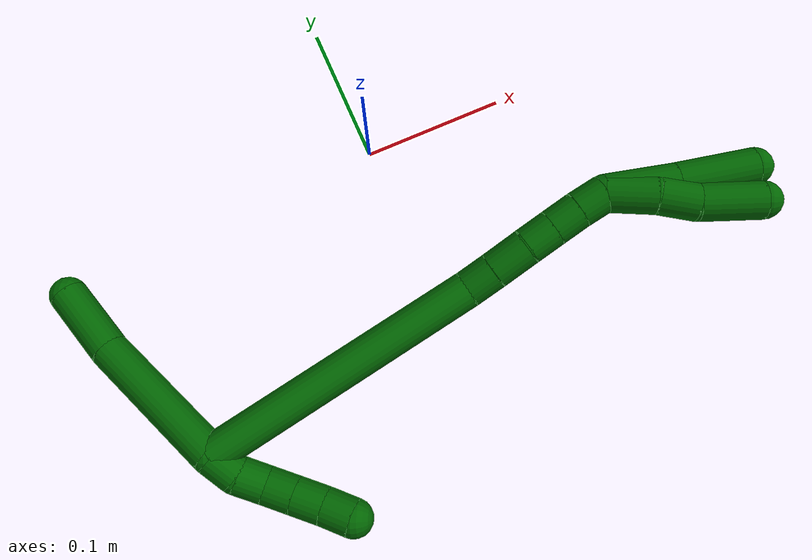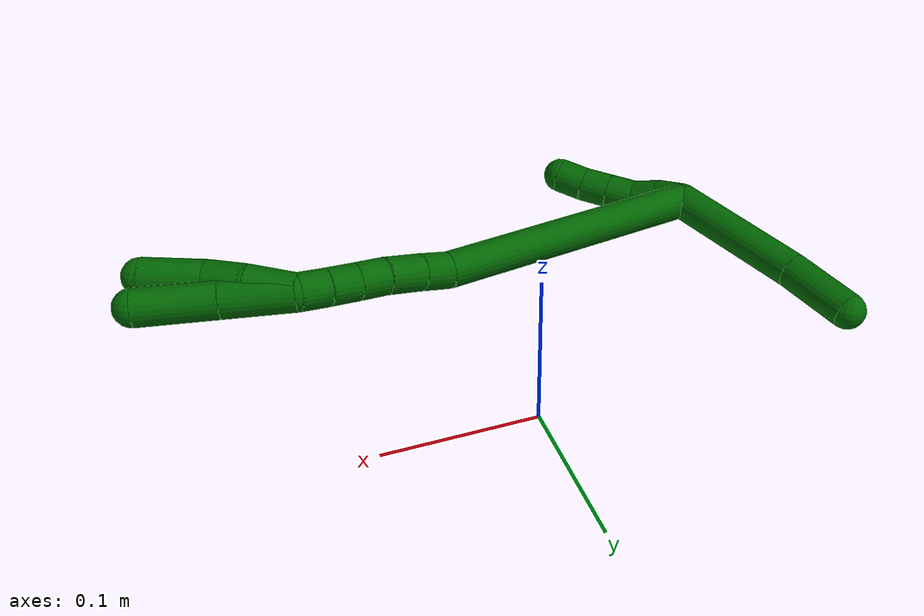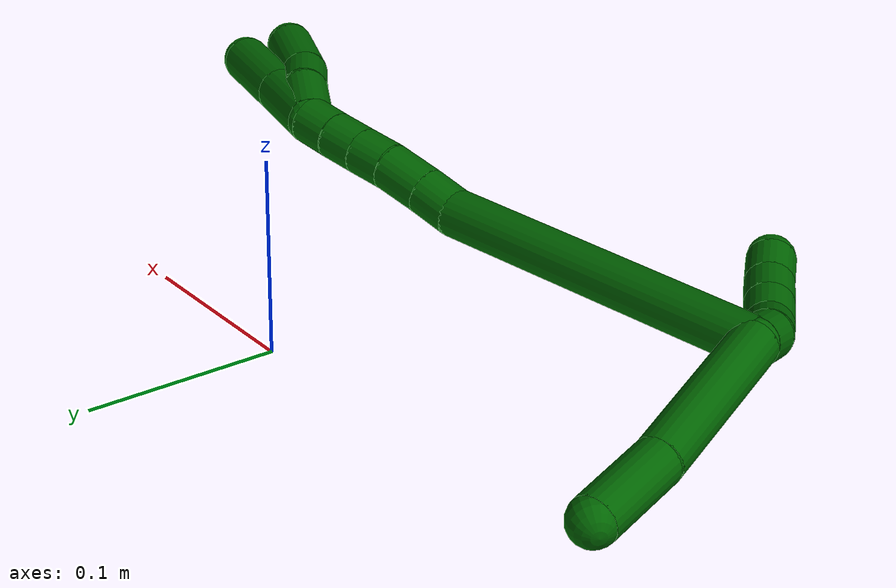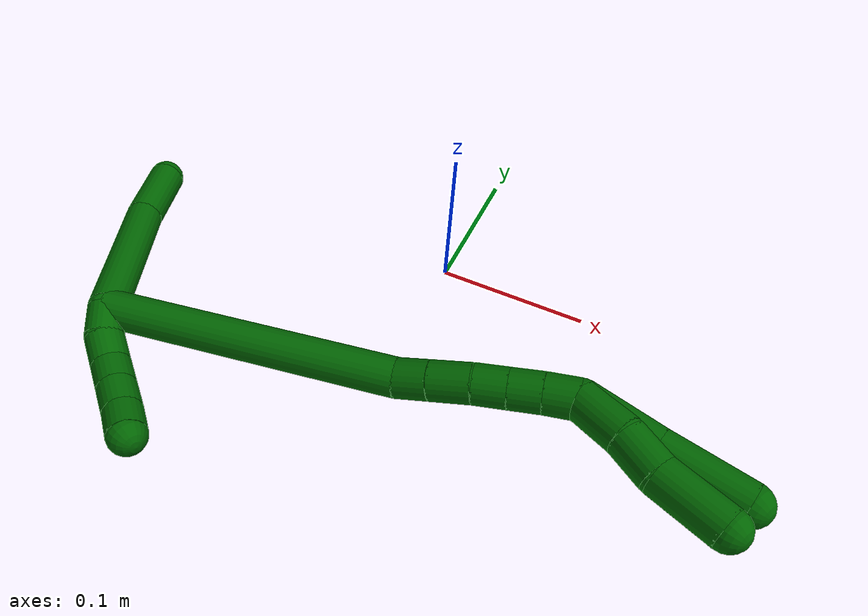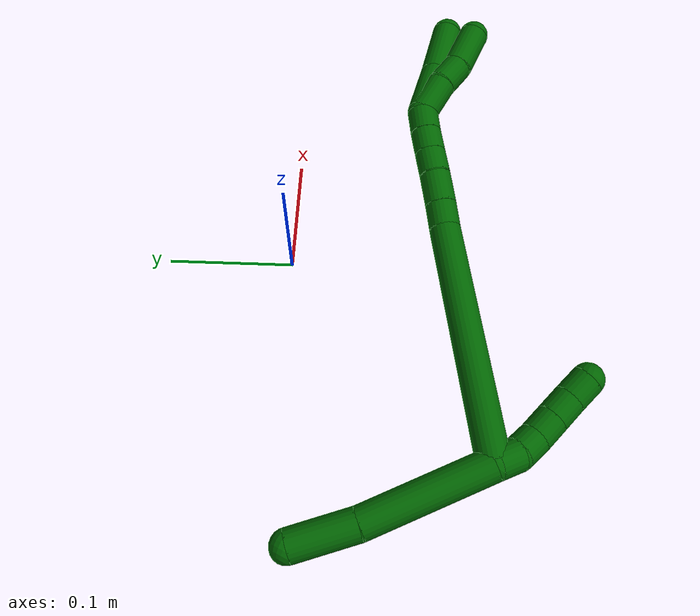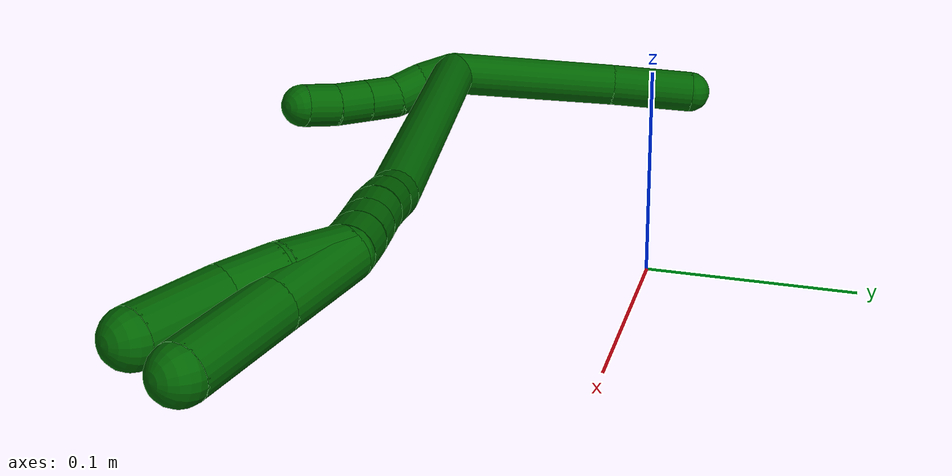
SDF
<sdf version="1.7">
 <world name="default">
  <model name="photoneo_s_sensor">
   <static>1</static>
   <pose>0 0 2 1.57079 1.57079 3.14159</pose>
   <link name="link">
    <inertial><mass>0.1</mass></inertial>
    <sensor name="sensor" type="depth">
     <update_rate>30</update_rate>
     <camera>
      <horizontal_fov>1.22</horizontal_fov>
      <image><width>1920</width><height>1200</height><format>B8G8R8</format></image>
      <clip><near>0.1</near><far>4</far></clip>
      <depth_camera><output>points</output></depth_camera>
     </camera>
     <plugin name="camera_plugin" filename="libgazebo_ros_depth_camera.so">
      <baseline>0.2</baseline>
      <alwaysOn>1</alwaysOn>
      <updateRate>0.0</updateRate>
      <cameraName>camera_ir</cameraName>
      <imageTopicName>/camera/color/image_raw</imageTopicName>
      <cameraInfoTopicName>/camera/color/camera_info</cameraInfoTopicName>
      <depthImageTopicName>/camera/depth/image_raw</depthImageTopicName>
      <depthImageCameraInfoTopicName>/camera/depth/camera_info</depthImageCameraInfoTopicName>
      <pointCloudTopicName>/camera/depth/points</pointCloudTopicName>
      <frameName>fr_optical</frameName>
      <pointCloudCutoff>0.1</pointCloudCutoff>
      <pointCloudCutoffMax>2.0</pointCloudCutoffMax>
      <distortionK1>0</distortionK1>
      <distortionK2>0</distortionK2>
      <distortionK3>0</distortionK3>
      <distortionT1>0</distortionT1>
      <distortionT2>0</distortionT2>
      <CxPrime>0</CxPrime>
      <Cx>0</Cx>
      <Cy>0</Cy>
      <focalLength>0</focalLength>
      <hackBaseline>0</hackBaseline>
     </plugin>
    </sensor>
   </link>
  </model>
  <model name="bin">
   <static>1</static>
   <link name="bottom">
    <collision name="collision-bottom">
     <pose>0 0 -0.01 0 -0 0</pose>
     <geometry><box><size>0.8 0.6 0.02</size></box></geometry>
     <surface>
      <friction><ode><mu>100</mu><mu2>100</mu2></ode></friction>
      <contact><collide_bitmask>65535</collide_bitmask></contact>
     </surface>
    </collision>
   </link>
   <link name="west_wall">
    <collision name="collision-west_wall">
     <pose>-0.41 0 0.1 0 -0 0</pose>
     <geometry><box><size>0.02 0.6 0.2</size></box></geometry>
     <surface>
      <friction><ode><mu>100</mu><mu2>100</mu2></ode></friction>
      <contact><collide_bitmask>65535</collide_bitmask></contact>
     </surface>
    </collision>
   </link>
   <link name="east_wall">
    <collision name="collision-east_wall">
     <pose>0.41 0 0.1 0 -0 0</pose>
     <geometry><box><size>0.02 0.6 0.2</size></box></geometry>
     <surface>
      <friction><ode><mu>100</mu><mu2>100</mu2></ode></friction>
      <contact><collide_bitmask>65535</collide_bitmask></contact>
     </surface>
    </collision>
   </link>
   <link name="south_wall">
    <collision name="collision-south_wall">
     <pose>0 -0.31 0.1 0 -0 0</pose>
     <geometry><box><size>0.8 0.02 0.2</size></box></geometry>
     <surface>
      <friction><ode><mu>100</mu><mu2>100</mu2></ode></friction>
      <contact><collide_bitmask>65535</collide_bitmask></contact>
     </surface>
    </collision>
   </link>
   <link name="north_wall">
    <collision name="collision-north_wall">
     <pose>0 0.31 0.1 0 -0 0</pose>
     <geometry><box><size>0.8 0.02 0.2</size></box></geometry>
     <surface>
      <friction><ode><mu>100</mu><mu2>100</mu2></ode></friction>
      <contact><collide_bitmask>65535</collide_bitmask></contact>
     </surface>
    </collision>
   </link>
  </model>
  <model name="6">
   <static>0</static>
   <link name="6">
    <collision name="collision-cylinder-e_1_2_8">
     <pose>0.014236 0.028933 -0.03808 -2.49185 0.289326 -0.816475</pose>
     <geometry><cylinder><radius>0.0125</radius><length>0.099797</length></cylinder></geometry>
     <surface>
      <friction><ode><mu>1.16</mu><mu2>1.16</mu2><slip1>0</slip1><slip2>0</slip2></ode></friction>
      <contact><ode><kp>1e+06</kp><kd>1</kd><max_vel>0</max_vel><min_depth>0.001</min_depth></ode></contact>
     </surface>
    </collision>
    <visual name="visual-cylinder-e_1_2_8">
     <pose>0.014236 0.028933 -0.03808 -2.49185 0.289326 -0.816475</pose>
     <geometry><cylinder><radius>0.0125</radius><length>0.099797</length></cylinder></geometry>
     <material><ambient>0 0.392157 0.003922 1</ambient></material>
    </visual>
    <collision name="collision-cylinder-e_2_8_6">
     <pose>0.036338 0.074374 -0.093356 -2.37661 0.318701 -0.760122</pose>
     <geometry><cylinder><radius>0.0125</radius><length>0.050203</length></cylinder></geometry>
     <surface>
      <friction><ode><mu>1.16</mu><mu2>1.16</mu2><slip1>0</slip1><slip2>0</slip2></ode></friction>
      <contact><ode><kp>1e+06</kp><kd>1</kd><max_vel>0</max_vel><min_depth>0.001</min_depth></ode></contact>
     </surface>
    </collision>
    <visual name="visual-cylinder-e_2_8_6">
     <pose>0.036338 0.074374 -0.093356 -2.37661 0.318701 -0.760122</pose>
     <geometry><cylinder><radius>0.0125</radius><length>0.050203</length></cylinder></geometry>
     <material><ambient>0 0.392157 0.003922 1</ambient></material>
    </visual>
    <collision name="collision-cylinder-e_1_2_9">
     <pose>0.000832 -0.006733 0.007346 0.741895 0.08333 0.032427</pose>
     <geometry><cylinder><radius>0.0125</radius><length>0.02</length></cylinder></geometry>
     <surface>
      <friction><ode><mu>1.16</mu><mu2>1.16</mu2><slip1>0</slip1><slip2>0</slip2></ode></friction>
      <contact><ode><kp>1e+06</kp><kd>1</kd><max_vel>0</max_vel><min_depth>0.001</min_depth></ode></contact>
     </surface>
    </collision>
    <visual name="visual-cylinder-e_1_2_9">
     <pose>0.000832 -0.006733 0.007346 0.741895 0.08333 0.032427</pose>
     <geometry><cylinder><radius>0.0125</radius><length>0.02</length></cylinder></geometry>
     <material><ambient>0 0.392157 0.003922 1</ambient></material>
    </visual>
    <collision name="collision-cylinder-e_2_9_10">
     <pose>0.003982 -0.01786 0.023372 0.468613 0.233847 0.056058</pose>
     <geometry><cylinder><radius>0.0125</radius><length>0.02</length></cylinder></geometry>
     <surface>
      <friction><ode><mu>1.16</mu><mu2>1.16</mu2><slip1>0</slip1><slip2>0</slip2></ode></friction>
      <contact><ode><kp>1e+06</kp><kd>1</kd><max_vel>0</max_vel><min_depth>0.001</min_depth></ode></contact>
     </surface>
    </collision>
    <visual name="visual-cylinder-e_2_9_10">
     <pose>0.003982 -0.01786 0.023372 0.468613 0.233847 0.056058</pose>
     <geometry><cylinder><radius>0.0125</radius><length>0.02</length></cylinder></geometry>
     <material><ambient>0 0.392157 0.003922 1</ambient></material>
    </visual>
    <collision name="collision-cylinder-e_3_10_11">
     <pose>0.005808 -0.025176 0.041602 0.296912 -0.049149 -0.007352</pose>
     <geometry><cylinder><radius>0.0125</radius><length>0.02</length></cylinder></geometry>
     <surface>
      <friction><ode><mu>1.16</mu><mu2>1.16</mu2><slip1>0</slip1><slip2>0</slip2></ode></friction>
      <contact><ode><kp>1e+06</kp><kd>1</kd><max_vel>0</max_vel><min_depth>0.001</min_depth></ode></contact>
     </surface>
    </collision>
    <visual name="visual-cylinder-e_3_10_11">
     <pose>0.005808 -0.025176 0.041602 0.296912 -0.049149 -0.007352</pose>
     <geometry><cylinder><radius>0.0125</radius><length>0.02</length></cylinder></geometry>
     <material><ambient>0 0.392157 0.003922 1</ambient></material>
    </visual>
    <collision name="collision-cylinder-e_4_11_12">
     <pose>0.004809 -0.031015 0.060704 0.296403 -0.050773 -0.007582</pose>
     <geometry><cylinder><radius>0.0125</radius><length>0.02</length></cylinder></geometry>
     <surface>
      <friction><ode><mu>1.16</mu><mu2>1.16</mu2><slip1>0</slip1><slip2>0</slip2></ode></friction>
      <contact><ode><kp>1e+06</kp><kd>1</kd><max_vel>0</max_vel><min_depth>0.001</min_depth></ode></contact>
     </surface>
    </collision>
    <visual name="visual-cylinder-e_4_11_12">
     <pose>0.004809 -0.031015 0.060704 0.296403 -0.050773 -0.007582</pose>
     <geometry><cylinder><radius>0.0125</radius><length>0.02</length></cylinder></geometry>
     <material><ambient>0 0.392157 0.003922 1</ambient></material>
    </visual>
    <collision name="collision-cylinder-e_5_12_5">
     <pose>0.002746 -0.03667 0.079747 0.28085 -0.156161 -0.022118</pose>
     <geometry><cylinder><radius>0.0125</radius><length>0.02</length></cylinder></geometry>
     <surface>
      <friction><ode><mu>1.16</mu><mu2>1.16</mu2><slip1>0</slip1><slip2>0</slip2></ode></friction>
      <contact><ode><kp>1e+06</kp><kd>1</kd><max_vel>0</max_vel><min_depth>0.001</min_depth></ode></contact>
     </surface>
    </collision>
    <visual name="visual-cylinder-e_5_12_5">
     <pose>0.002746 -0.03667 0.079747 0.28085 -0.156161 -0.022118</pose>
     <geometry><cylinder><radius>0.0125</radius><length>0.02</length></cylinder></geometry>
     <material><ambient>0 0.392157 0.003922 1</ambient></material>
    </visual>
    <collision name="collision-cylinder-e_1_2_13">
     <pose>0.032455 0.045376 0.078373 -0.524817 0.344112 -0.093285</pose>
     <geometry><cylinder><radius>0.0125</radius><length>0.192402</length></cylinder></geometry>
     <surface>
      <friction><ode><mu>1.16</mu><mu2>1.16</mu2><slip1>0</slip1><slip2>0</slip2></ode></friction>
      <contact><ode><kp>1e+06</kp><kd>1</kd><max_vel>0</max_vel><min_depth>0.001</min_depth></ode></contact>
     </surface>
    </collision>
    <visual name="visual-cylinder-e_1_2_13">
     <pose>0.032455 0.045376 0.078373 -0.524817 0.344112 -0.093285</pose>
     <geometry><cylinder><radius>0.0125</radius><length>0.192402</length></cylinder></geometry>
     <material><ambient>0 0.392157 0.003922 1</ambient></material>
    </visual>
    <collision name="collision-cylinder-e_2_13_14">
     <pose>0.066102 0.096745 0.165395 -0.605929 0.112914 -0.035329</pose>
     <geometry><cylinder><radius>0.0125</radius><length>0.021178</length></cylinder></geometry>
     <surface>
      <friction><ode><mu>1.16</mu><mu2>1.16</mu2><slip1>0</slip1><slip2>0</slip2></ode></friction>
      <contact><ode><kp>1e+06</kp><kd>1</kd><max_vel>0</max_vel><min_depth>0.001</min_depth></ode></contact>
     </surface>
    </collision>
    <visual name="visual-cylinder-e_2_13_14">
     <pose>0.066102 0.096745 0.165395 -0.605929 0.112914 -0.035329</pose>
     <geometry><cylinder><radius>0.0125</radius><length>0.021178</length></cylinder></geometry>
     <material><ambient>0 0.392157 0.003922 1</ambient></material>
    </visual>
    <collision name="collision-cylinder-e_3_14_15">
     <pose>0.069092 0.110156 0.184499 -0.61709 0.139205 -0.044432</pose>
     <geometry><cylinder><radius>0.0125</radius><length>0.025891</length></cylinder></geometry>
     <surface>
      <friction><ode><mu>1.16</mu><mu2>1.16</mu2><slip1>0</slip1><slip2>0</slip2></ode></friction>
      <contact><ode><kp>1e+06</kp><kd>1</kd><max_vel>0</max_vel><min_depth>0.001</min_depth></ode></contact>
     </surface>
    </collision>
    <visual name="visual-cylinder-e_3_14_15">
     <pose>0.069092 0.110156 0.184499 -0.61709 0.139205 -0.044432</pose>
     <geometry><cylinder><radius>0.0125</radius><length>0.025891</length></cylinder></geometry>
     <material><ambient>0 0.392157 0.003922 1</ambient></material>
    </visual>
    <collision name="collision-cylinder-e_4_15_16">
     <pose>0.073239 0.123126 0.203174 -0.594071 0.232763 -0.071539</pose>
     <geometry><cylinder><radius>0.0125</radius><length>0.020386</length></cylinder></geometry>
     <surface>
      <friction><ode><mu>1.16</mu><mu2>1.16</mu2><slip1>0</slip1><slip2>0</slip2></ode></friction>
      <contact><ode><kp>1e+06</kp><kd>1</kd><max_vel>0</max_vel><min_depth>0.001</min_depth></ode></contact>
     </surface>
    </collision>
    <visual name="visual-cylinder-e_4_15_16">
     <pose>0.073239 0.123126 0.203174 -0.594071 0.232763 -0.071539</pose>
     <geometry><cylinder><radius>0.0125</radius><length>0.020386</length></cylinder></geometry>
     <material><ambient>0 0.392157 0.003922 1</ambient></material>
    </visual>
    <collision name="collision-cylinder-e_5_16_17">
     <pose>0.077796 0.134127 0.219484 -0.592742 0.222336 -0.068148</pose>
     <geometry><cylinder><radius>0.0125</radius><length>0.020004</length></cylinder></geometry>
     <surface>
      <friction><ode><mu>1.16</mu><mu2>1.16</mu2><slip1>0</slip1><slip2>0</slip2></ode></friction>
      <contact><ode><kp>1e+06</kp><kd>1</kd><max_vel>0</max_vel><min_depth>0.001</min_depth></ode></contact>
     </surface>
    </collision>
    <visual name="visual-cylinder-e_5_16_17">
     <pose>0.077796 0.134127 0.219484 -0.592742 0.222336 -0.068148</pose>
     <geometry><cylinder><radius>0.0125</radius><length>0.020004</length></cylinder></geometry>
     <material><ambient>0 0.392157 0.003922 1</ambient></material>
    </visual>
    <collision name="collision-cylinder-e_6_17_1">
     <pose>0.082182 0.144628 0.236009 -0.539637 0.218333 -0.060605</pose>
     <geometry><cylinder><radius>0.0125</radius><length>0.020139</length></cylinder></geometry>
     <surface>
      <friction><ode><mu>1.16</mu><mu2>1.16</mu2><slip1>0</slip1><slip2>0</slip2></ode></friction>
      <contact><ode><kp>1e+06</kp><kd>1</kd><max_vel>0</max_vel><min_depth>0.001</min_depth></ode></contact>
     </surface>
    </collision>
    <visual name="visual-cylinder-e_6_17_1">
     <pose>0.082182 0.144628 0.236009 -0.539637 0.218333 -0.060605</pose>
     <geometry><cylinder><radius>0.0125</radius><length>0.020139</length></cylinder></geometry>
     <material><ambient>0 0.392157 0.003922 1</ambient></material>
    </visual>
    <collision name="collision-cylinder-e_1_1_18">
     <pose>0.084559 0.148757 0.26076 0.056469 0.011957 0.000338</pose>
     <geometry><cylinder><radius>0.0125</radius><length>0.032689</length></cylinder></geometry>
     <surface>
      <friction><ode><mu>1.16</mu><mu2>1.16</mu2><slip1>0</slip1><slip2>0</slip2></ode></friction>
      <contact><ode><kp>1e+06</kp><kd>1</kd><max_vel>0</max_vel><min_depth>0.001</min_depth></ode></contact>
     </surface>
    </collision>
    <visual name="visual-cylinder-e_1_1_18">
     <pose>0.084559 0.148757 0.26076 0.056469 0.011957 0.000338</pose>
     <geometry><cylinder><radius>0.0125</radius><length>0.032689</length></cylinder></geometry>
     <material><ambient>0 0.392157 0.003922 1</ambient></material>
    </visual>
    <collision name="collision-cylinder-e_2_18_19">
     <pose>0.086132 0.145247 0.289682 0.202449 0.10669 0.010847</pose>
     <geometry><cylinder><radius>0.0125</radius><length>0.025883</length></cylinder></geometry>
     <surface>
      <friction><ode><mu>1.16</mu><mu2>1.16</mu2><slip1>0</slip1><slip2>0</slip2></ode></friction>
      <contact><ode><kp>1e+06</kp><kd>1</kd><max_vel>0</max_vel><min_depth>0.001</min_depth></ode></contact>
     </surface>
    </collision>
    <visual name="visual-cylinder-e_2_18_19">
     <pose>0.086132 0.145247 0.289682 0.202449 0.10669 0.010847</pose>
     <geometry><cylinder><radius>0.0125</radius><length>0.025883</length></cylinder></geometry>
     <material><ambient>0 0.392157 0.003922 1</ambient></material>
    </visual>
    <collision name="collision-cylinder-e_3_19_4">
     <pose>0.090581 0.142693 0.322772 -0.001617 0.148797 -0.000121</pose>
     <geometry><cylinder><radius>0.0125</radius><length>0.041428</length></cylinder></geometry>
     <surface>
      <friction><ode><mu>1.16</mu><mu2>1.16</mu2><slip1>0</slip1><slip2>0</slip2></ode></friction>
      <contact><ode><kp>1e+06</kp><kd>1</kd><max_vel>0</max_vel><min_depth>0.001</min_depth></ode></contact>
     </surface>
    </collision>
    <visual name="visual-cylinder-e_3_19_4">
     <pose>0.090581 0.142693 0.322772 -0.001617 0.148797 -0.000121</pose>
     <geometry><cylinder><radius>0.0125</radius><length>0.041428</length></cylinder></geometry>
     <material><ambient>0 0.392157 0.003922 1</ambient></material>
    </visual>
    <collision name="collision-cylinder-e_1_1_20">
     <pose>0.090295 0.152301 0.267188 -0.114738 0.25351 -0.014638</pose>
     <geometry><cylinder><radius>0.0125</radius><length>0.047304</length></cylinder></geometry>
     <surface>
      <friction><ode><mu>1.16</mu><mu2>1.16</mu2><slip1>0</slip1><slip2>0</slip2></ode></friction>
      <contact><ode><kp>1e+06</kp><kd>1</kd><max_vel>0</max_vel><min_depth>0.001</min_depth></ode></contact>
     </surface>
    </collision>
    <visual name="visual-cylinder-e_1_1_20">
     <pose>0.090295 0.152301 0.267188 -0.114738 0.25351 -0.014638</pose>
     <geometry><cylinder><radius>0.0125</radius><length>0.047304</length></cylinder></geometry>
     <material><ambient>0 0.392157 0.003922 1</ambient></material>
    </visual>
    <collision name="collision-cylinder-e_2_20_3">
     <pose>0.102643 0.158738 0.315202 -0.149898 0.245967 -0.018563</pose>
     <geometry><cylinder><radius>0.0125</radius><length>0.052696</length></cylinder></geometry>
     <surface>
      <friction><ode><mu>1.16</mu><mu2>1.16</mu2><slip1>0</slip1><slip2>0</slip2></ode></friction>
      <contact><ode><kp>1e+06</kp><kd>1</kd><max_vel>0</max_vel><min_depth>0.001</min_depth></ode></contact>
     </surface>
    </collision>
    <visual name="visual-cylinder-e_2_20_3">
     <pose>0.102643 0.158738 0.315202 -0.149898 0.245967 -0.018563</pose>
     <geometry><cylinder><radius>0.0125</radius><length>0.052696</length></cylinder></geometry>
     <material><ambient>0 0.392157 0.003922 1</ambient></material>
    </visual>
    <collision name="collision-sphere-3">
     <pose>0.109059 0.162555 0.34047 0 -0 0</pose>
     <geometry><sphere><radius>0.0125</radius></sphere></geometry>
     <surface>
      <friction><ode><mu>1.16</mu><mu2>1.16</mu2><slip1>0</slip1><slip2>0</slip2></ode></friction>
      <contact><ode><kp>1e+06</kp><kd>1</kd><max_vel>0</max_vel><min_depth>0.001</min_depth></ode></contact>
     </surface>
    </collision>
    <visual name="visual-sphere-3">
     <pose>0.109059 0.162555 0.34047 0 -0 0</pose>
     <geometry><sphere><radius>0.0125</radius></sphere></geometry>
     <material><ambient>0 0.392157 0.003922 1</ambient></material>
    </visual>
    <collision name="collision-sphere-20">
     <pose>0.096227 0.154922 0.289934 0 -0 0</pose>
     <geometry><sphere><radius>0.0125</radius></sphere></geometry>
     <surface>
      <friction><ode><mu>1.16</mu><mu2>1.16</mu2><slip1>0</slip1><slip2>0</slip2></ode></friction>
      <contact><ode><kp>1e+06</kp><kd>1</kd><max_vel>0</max_vel><min_depth>0.001</min_depth></ode></contact>
     </surface>
    </collision>
    <visual name="visual-sphere-20">
     <pose>0.096227 0.154922 0.289934 0 -0 0</pose>
     <geometry><sphere><radius>0.0125</radius></sphere></geometry>
     <material><ambient>0 0.392157 0.003922 1</ambient></material>
    </visual>
    <collision name="collision-sphere-4">
     <pose>0.093652 0.142726 0.343257 0 -0 0</pose>
     <geometry><sphere><radius>0.0125</radius></sphere></geometry>
     <surface>
      <friction><ode><mu>1.16</mu><mu2>1.16</mu2><slip1>0</slip1><slip2>0</slip2></ode></friction>
      <contact><ode><kp>1e+06</kp><kd>1</kd><max_vel>0</max_vel><min_depth>0.001</min_depth></ode></contact>
     </surface>
    </collision>
    <visual name="visual-sphere-4">
     <pose>0.093652 0.142726 0.343257 0 -0 0</pose>
     <geometry><sphere><radius>0.0125</radius></sphere></geometry>
     <material><ambient>0 0.392157 0.003922 1</ambient></material>
    </visual>
    <collision name="collision-sphere-11">
     <pose>0.005317 -0.028098 0.051153 0 -0 0</pose>
     <geometry><sphere><radius>0.0125</radius></sphere></geometry>
     <surface>
      <friction><ode><mu>1.16</mu><mu2>1.16</mu2><slip1>0</slip1><slip2>0</slip2></ode></friction>
      <contact><ode><kp>1e+06</kp><kd>1</kd><max_vel>0</max_vel><min_depth>0.001</min_depth></ode></contact>
     </surface>
    </collision>
    <visual name="visual-sphere-11">
     <pose>0.005317 -0.028098 0.051153 0 -0 0</pose>
     <geometry><sphere><radius>0.0125</radius></sphere></geometry>
     <material><ambient>0 0.392157 0.003922 1</ambient></material>
    </visual>
    <collision name="collision-sphere-10">
     <pose>0.006299 -0.022254 0.032051 0 -0 0</pose>
     <geometry><sphere><radius>0.0125</radius></sphere></geometry>
     <surface>
      <friction><ode><mu>1.16</mu><mu2>1.16</mu2><slip1>0</slip1><slip2>0</slip2></ode></friction>
      <contact><ode><kp>1e+06</kp><kd>1</kd><max_vel>0</max_vel><min_depth>0.001</min_depth></ode></contact>
     </surface>
    </collision>
    <visual name="visual-sphere-10">
     <pose>0.006299 -0.022254 0.032051 0 -0 0</pose>
     <geometry><sphere><radius>0.0125</radius></sphere></geometry>
     <material><ambient>0 0.392157 0.003922 1</ambient></material>
    </visual>
    <collision name="collision-sphere-6">
     <pose>0.044203 0.090882 -0.110552 0 -0 0</pose>
     <geometry><sphere><radius>0.0125</radius></sphere></geometry>
     <surface>
      <friction><ode><mu>1.16</mu><mu2>1.16</mu2><slip1>0</slip1><slip2>0</slip2></ode></friction>
      <contact><ode><kp>1e+06</kp><kd>1</kd><max_vel>0</max_vel><min_depth>0.001</min_depth></ode></contact>
     </surface>
    </collision>
    <visual name="visual-sphere-6">
     <pose>0.044203 0.090882 -0.110552 0 -0 0</pose>
     <geometry><sphere><radius>0.0125</radius></sphere></geometry>
     <material><ambient>0 0.392157 0.003922 1</ambient></material>
    </visual>
    <collision name="collision-sphere-9">
     <pose>0.001665 -0.013467 0.014693 0 -0 0</pose>
     <geometry><sphere><radius>0.0125</radius></sphere></geometry>
     <surface>
      <friction><ode><mu>1.16</mu><mu2>1.16</mu2><slip1>0</slip1><slip2>0</slip2></ode></friction>
      <contact><ode><kp>1e+06</kp><kd>1</kd><max_vel>0</max_vel><min_depth>0.001</min_depth></ode></contact>
     </surface>
    </collision>
    <visual name="visual-sphere-9">
     <pose>0.001665 -0.013467 0.014693 0 -0 0</pose>
     <geometry><sphere><radius>0.0125</radius></sphere></geometry>
     <material><ambient>0 0.392157 0.003922 1</ambient></material>
    </visual>
    <collision name="collision-sphere-2">
     <geometry><sphere><radius>0.0125</radius></sphere></geometry>
     <surface>
      <friction><ode><mu>1.16</mu><mu2>1.16</mu2><slip1>0</slip1><slip2>0</slip2></ode></friction>
      <contact><ode><kp>1e+06</kp><kd>1</kd><max_vel>0</max_vel><min_depth>0.001</min_depth></ode></contact>
     </surface>
    </collision>
    <visual name="visual-sphere-2">
     <geometry><sphere><radius>0.0125</radius></sphere></geometry>
     <material><ambient>0 0.392157 0.003922 1</ambient></material>
    </visual>
    <collision name="collision-sphere-19">
     <pose>0.08751 0.14266 0.302287 0 -0 0</pose>
     <geometry><sphere><radius>0.0125</radius></sphere></geometry>
     <surface>
      <friction><ode><mu>1.16</mu><mu2>1.16</mu2><slip1>0</slip1><slip2>0</slip2></ode></friction>
      <contact><ode><kp>1e+06</kp><kd>1</kd><max_vel>0</max_vel><min_depth>0.001</min_depth></ode></contact>
     </surface>
    </collision>
    <visual name="visual-sphere-19">
     <pose>0.08751 0.14266 0.302287 0 -0 0</pose>
     <geometry><sphere><radius>0.0125</radius></sphere></geometry>
     <material><ambient>0 0.392157 0.003922 1</ambient></material>
    </visual>
    <collision name="collision-sphere-8">
     <pose>0.028473 0.057866 -0.076159 0 -0 0</pose>
     <geometry><sphere><radius>0.0125</radius></sphere></geometry>
     <surface>
      <friction><ode><mu>1.16</mu><mu2>1.16</mu2><slip1>0</slip1><slip2>0</slip2></ode></friction>
      <contact><ode><kp>1e+06</kp><kd>1</kd><max_vel>0</max_vel><min_depth>0.001</min_depth></ode></contact>
     </surface>
    </collision>
    <visual name="visual-sphere-8">
     <pose>0.028473 0.057866 -0.076159 0 -0 0</pose>
     <geometry><sphere><radius>0.0125</radius></sphere></geometry>
     <material><ambient>0 0.392157 0.003922 1</ambient></material>
    </visual>
    <collision name="collision-sphere-12">
     <pose>0.004302 -0.033932 0.070256 0 -0 0</pose>
     <geometry><sphere><radius>0.0125</radius></sphere></geometry>
     <surface>
      <friction><ode><mu>1.16</mu><mu2>1.16</mu2><slip1>0</slip1><slip2>0</slip2></ode></friction>
      <contact><ode><kp>1e+06</kp><kd>1</kd><max_vel>0</max_vel><min_depth>0.001</min_depth></ode></contact>
     </surface>
    </collision>
    <visual name="visual-sphere-12">
     <pose>0.004302 -0.033932 0.070256 0 -0 0</pose>
     <geometry><sphere><radius>0.0125</radius></sphere></geometry>
     <material><ambient>0 0.392157 0.003922 1</ambient></material>
    </visual>
    <collision name="collision-sphere-5">
     <pose>0.001191 -0.039408 0.089238 0 -0 0</pose>
     <geometry><sphere><radius>0.0125</radius></sphere></geometry>
     <surface>
      <friction><ode><mu>1.16</mu><mu2>1.16</mu2><slip1>0</slip1><slip2>0</slip2></ode></friction>
      <contact><ode><kp>1e+06</kp><kd>1</kd><max_vel>0</max_vel><min_depth>0.001</min_depth></ode></contact>
     </surface>
    </collision>
    <visual name="visual-sphere-5">
     <pose>0.001191 -0.039408 0.089238 0 -0 0</pose>
     <geometry><sphere><radius>0.0125</radius></sphere></geometry>
     <material><ambient>0 0.392157 0.003922 1</ambient></material>
    </visual>
    <collision name="collision-sphere-13">
     <pose>0.064909 0.090752 0.156747 0 -0 0</pose>
     <geometry><sphere><radius>0.0125</radius></sphere></geometry>
     <surface>
      <friction><ode><mu>1.16</mu><mu2>1.16</mu2><slip1>0</slip1><slip2>0</slip2></ode></friction>
      <contact><ode><kp>1e+06</kp><kd>1</kd><max_vel>0</max_vel><min_depth>0.001</min_depth></ode></contact>
     </surface>
    </collision>
    <visual name="visual-sphere-13">
     <pose>0.064909 0.090752 0.156747 0 -0 0</pose>
     <geometry><sphere><radius>0.0125</radius></sphere></geometry>
     <material><ambient>0 0.392157 0.003922 1</ambient></material>
    </visual>
    <collision name="collision-sphere-14">
     <pose>0.067295 0.102737 0.174043 0 -0 0</pose>
     <geometry><sphere><radius>0.0125</radius></sphere></geometry>
     <surface>
      <friction><ode><mu>1.16</mu><mu2>1.16</mu2><slip1>0</slip1><slip2>0</slip2></ode></friction>
      <contact><ode><kp>1e+06</kp><kd>1</kd><max_vel>0</max_vel><min_depth>0.001</min_depth></ode></contact>
     </surface>
    </collision>
    <visual name="visual-sphere-14">
     <pose>0.067295 0.102737 0.174043 0 -0 0</pose>
     <geometry><sphere><radius>0.0125</radius></sphere></geometry>
     <material><ambient>0 0.392157 0.003922 1</ambient></material>
    </visual>
    <collision name="collision-sphere-15">
     <pose>0.070888 0.117574 0.194955 0 -0 0</pose>
     <geometry><sphere><radius>0.0125</radius></sphere></geometry>
     <surface>
      <friction><ode><mu>1.16</mu><mu2>1.16</mu2><slip1>0</slip1><slip2>0</slip2></ode></friction>
      <contact><ode><kp>1e+06</kp><kd>1</kd><max_vel>0</max_vel><min_depth>0.001</min_depth></ode></contact>
     </surface>
    </collision>
    <visual name="visual-sphere-15">
     <pose>0.070888 0.117574 0.194955 0 -0 0</pose>
     <geometry><sphere><radius>0.0125</radius></sphere></geometry>
     <material><ambient>0 0.392157 0.003922 1</ambient></material>
    </visual>
    <collision name="collision-sphere-16">
     <pose>0.07559 0.128677 0.211392 0 -0 0</pose>
     <geometry><sphere><radius>0.0125</radius></sphere></geometry>
     <surface>
      <friction><ode><mu>1.16</mu><mu2>1.16</mu2><slip1>0</slip1><slip2>0</slip2></ode></friction>
      <contact><ode><kp>1e+06</kp><kd>1</kd><max_vel>0</max_vel><min_depth>0.001</min_depth></ode></contact>
     </surface>
    </collision>
    <visual name="visual-sphere-16">
     <pose>0.07559 0.128677 0.211392 0 -0 0</pose>
     <geometry><sphere><radius>0.0125</radius></sphere></geometry>
     <material><ambient>0 0.392157 0.003922 1</ambient></material>
    </visual>
    <collision name="collision-sphere-17">
     <pose>0.080001 0.139577 0.227575 0 -0 0</pose>
     <geometry><sphere><radius>0.0125</radius></sphere></geometry>
     <surface>
      <friction><ode><mu>1.16</mu><mu2>1.16</mu2><slip1>0</slip1><slip2>0</slip2></ode></friction>
      <contact><ode><kp>1e+06</kp><kd>1</kd><max_vel>0</max_vel><min_depth>0.001</min_depth></ode></contact>
     </surface>
    </collision>
    <visual name="visual-sphere-17">
     <pose>0.080001 0.139577 0.227575 0 -0 0</pose>
     <geometry><sphere><radius>0.0125</radius></sphere></geometry>
     <material><ambient>0 0.392157 0.003922 1</ambient></material>
    </visual>
    <collision name="collision-sphere-1">
     <pose>0.084363 0.149679 0.244443 0 -0 0</pose>
     <geometry><sphere><radius>0.0125</radius></sphere></geometry>
     <surface>
      <friction><ode><mu>1.16</mu><mu2>1.16</mu2><slip1>0</slip1><slip2>0</slip2></ode></friction>
      <contact><ode><kp>1e+06</kp><kd>1</kd><max_vel>0</max_vel><min_depth>0.001</min_depth></ode></contact>
     </surface>
    </collision>
    <visual name="visual-sphere-1">
     <pose>0.084363 0.149679 0.244443 0 -0 0</pose>
     <geometry><sphere><radius>0.0125</radius></sphere></geometry>
     <material><ambient>0 0.392157 0.003922 1</ambient></material>
    </visual>
    <collision name="collision-sphere-18">
     <pose>0.084754 0.147835 0.277077 0 -0 0</pose>
     <geometry><sphere><radius>0.0125</radius></sphere></geometry>
     <surface>
      <friction><ode><mu>1.16</mu><mu2>1.16</mu2><slip1>0</slip1><slip2>0</slip2></ode></friction>
      <contact><ode><kp>1e+06</kp><kd>1</kd><max_vel>0</max_vel><min_depth>0.001</min_depth></ode></contact>
     </surface>
    </collision>
    <visual name="visual-sphere-18">
     <pose>0.084754 0.147835 0.277077 0 -0 0</pose>
     <geometry><sphere><radius>0.0125</radius></sphere></geometry>
     <material><ambient>0 0.392157 0.003922 1</ambient></material>
    </visual>
    <inertial>
     <pose>0.04823 0.074816 0.121407 0 -0 0</pose>
     <mass>0.75</mass>
     <inertia>
      <ixx>0.000573</ixx>
      <ixy>0</ixy>
      <ixz>0</ixz>
      <iyy>0.000433</iyy>
      <iyz>0</iyz>
      <izz>-0.000554</izz>
     </inertia>
    </inertial>
   </link>
   <pose>-0.171363 -0.153438 0.030947 1.22255 1.11593 0.813479</pose>
  </model>
 </world>
</sdf>
